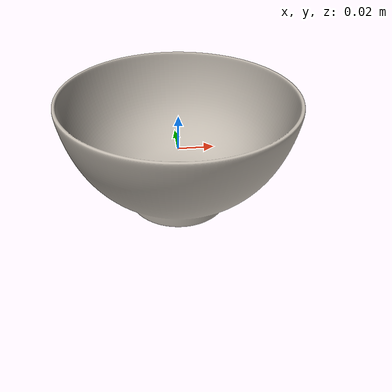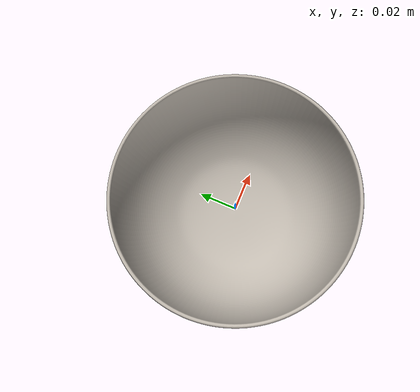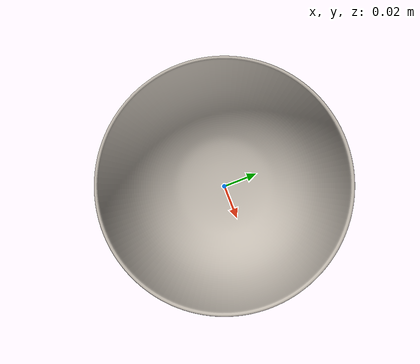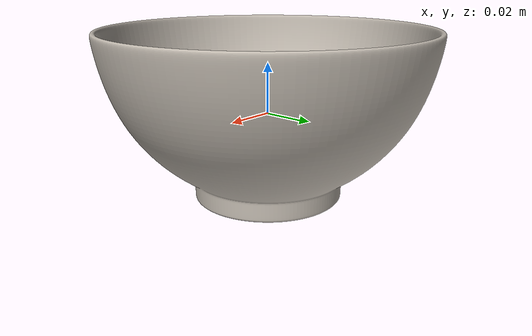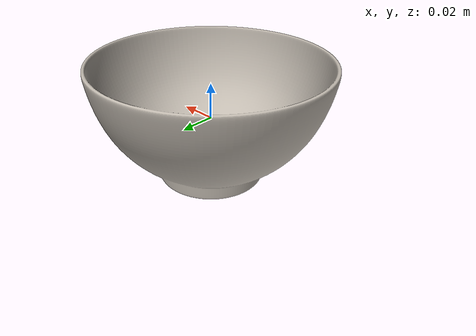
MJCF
<mujoco model="bowl_31">
  <asset>
    <mesh file="visual/model_normalized_0.obj" name="model_normalized_0_vis" scale="0.12999999999999995 0.12999999999999995 0.12999999999999995" refquat="1.0 0.0 0.0 0.0"/>
    <mesh file="collision/model_normalized_collision_22.obj" name="model_normalized_collision_22._coll" scale="0.12999999999999995 0.12999999999999995 0.12999999999999995" refquat="1.0 0.0 0.0 0.0"/>
    <mesh file="collision/model_normalized_collision_23.obj" name="model_normalized_collision_23._coll" scale="0.12999999999999995 0.12999999999999995 0.12999999999999995" refquat="1.0 0.0 0.0 0.0"/>
    <mesh file="collision/model_normalized_collision_21.obj" name="model_normalized_collision_21._coll" scale="0.12999999999999995 0.12999999999999995 0.12999999999999995" refquat="1.0 0.0 0.0 0.0"/>
    <mesh file="collision/model_normalized_collision_20.obj" name="model_normalized_collision_20._coll" scale="0.12999999999999995 0.12999999999999995 0.12999999999999995" refquat="1.0 0.0 0.0 0.0"/>
    <mesh file="collision/model_normalized_collision_24.obj" name="model_normalized_collision_24._coll" scale="0.12999999999999995 0.12999999999999995 0.12999999999999995" refquat="1.0 0.0 0.0 0.0"/>
    <mesh file="collision/model_normalized_collision_30.obj" name="model_normalized_collision_30._coll" scale="0.12999999999999995 0.12999999999999995 0.12999999999999995" refquat="1.0 0.0 0.0 0.0"/>
    <mesh file="collision/model_normalized_collision_18.obj" name="model_normalized_collision_18._coll" scale="0.12999999999999995 0.12999999999999995 0.12999999999999995" refquat="1.0 0.0 0.0 0.0"/>
    <mesh file="collision/model_normalized_collision_19.obj" name="model_normalized_collision_19._coll" scale="0.12999999999999995 0.12999999999999995 0.12999999999999995" refquat="1.0 0.0 0.0 0.0"/>
    <mesh file="collision/model_normalized_collision_31.obj" name="model_normalized_collision_31._coll" scale="0.12999999999999995 0.12999999999999995 0.12999999999999995" refquat="1.0 0.0 0.0 0.0"/>
    <mesh file="collision/model_normalized_collision_25.obj" name="model_normalized_collision_25._coll" scale="0.12999999999999995 0.12999999999999995 0.12999999999999995" refquat="1.0 0.0 0.0 0.0"/>
    <mesh file="collision/model_normalized_collision_27.obj" name="model_normalized_collision_27._coll" scale="0.12999999999999995 0.12999999999999995 0.12999999999999995" refquat="1.0 0.0 0.0 0.0"/>
    <mesh file="collision/model_normalized_collision_26.obj" name="model_normalized_collision_26._coll" scale="0.12999999999999995 0.12999999999999995 0.12999999999999995" refquat="1.0 0.0 0.0 0.0"/>
    <mesh file="collision/model_normalized_collision_9.obj" name="model_normalized_collision_9._coll" scale="0.12999999999999995 0.12999999999999995 0.12999999999999995" refquat="1.0 0.0 0.0 0.0"/>
    <mesh file="collision/model_normalized_collision_8.obj" name="model_normalized_collision_8._coll" scale="0.12999999999999995 0.12999999999999995 0.12999999999999995" refquat="1.0 0.0 0.0 0.0"/>
    <mesh file="collision/model_normalized_collision_6.obj" name="model_normalized_collision_6._coll" scale="0.12999999999999995 0.12999999999999995 0.12999999999999995" refquat="1.0 0.0 0.0 0.0"/>
    <mesh file="collision/model_normalized_collision_7.obj" name="model_normalized_collision_7._coll" scale="0.12999999999999995 0.12999999999999995 0.12999999999999995" refquat="1.0 0.0 0.0 0.0"/>
    <mesh file="collision/model_normalized_collision_5.obj" name="model_normalized_collision_5._coll" scale="0.12999999999999995 0.12999999999999995 0.12999999999999995" refquat="1.0 0.0 0.0 0.0"/>
    <mesh file="collision/model_normalized_collision_4.obj" name="model_normalized_collision_4._coll" scale="0.12999999999999995 0.12999999999999995 0.12999999999999995" refquat="1.0 0.0 0.0 0.0"/>
    <mesh file="collision/model_normalized_collision_0.obj" name="model_normalized_collision_0._coll" scale="0.12999999999999995 0.12999999999999995 0.12999999999999995" refquat="1.0 0.0 0.0 0.0"/>
    <mesh file="collision/model_normalized_collision_1.obj" name="model_normalized_collision_1._coll" scale="0.12999999999999995 0.12999999999999995 0.12999999999999995" refquat="1.0 0.0 0.0 0.0"/>
    <mesh file="collision/model_normalized_collision_3.obj" name="model_normalized_collision_3._coll" scale="0.12999999999999995 0.12999999999999995 0.12999999999999995" refquat="1.0 0.0 0.0 0.0"/>
    <mesh file="collision/model_normalized_collision_2.obj" name="model_normalized_collision_2._coll" scale="0.12999999999999995 0.12999999999999995 0.12999999999999995" refquat="1.0 0.0 0.0 0.0"/>
    <mesh file="collision/model_normalized_collision_17.obj" name="model_normalized_collision_17._coll" scale="0.12999999999999995 0.12999999999999995 0.12999999999999995" refquat="1.0 0.0 0.0 0.0"/>
    <mesh file="collision/model_normalized_collision_16.obj" name="model_normalized_collision_16._coll" scale="0.12999999999999995 0.12999999999999995 0.12999999999999995" refquat="1.0 0.0 0.0 0.0"/>
    <mesh file="collision/model_normalized_collision_28.obj" name="model_normalized_collision_28._coll" scale="0.12999999999999995 0.12999999999999995 0.12999999999999995" refquat="1.0 0.0 0.0 0.0"/>
    <mesh file="collision/model_normalized_collision_14.obj" name="model_normalized_collision_14._coll" scale="0.12999999999999995 0.12999999999999995 0.12999999999999995" refquat="1.0 0.0 0.0 0.0"/>
    <mesh file="collision/model_normalized_collision_15.obj" name="model_normalized_collision_15._coll" scale="0.12999999999999995 0.12999999999999995 0.12999999999999995" refquat="1.0 0.0 0.0 0.0"/>
    <mesh file="collision/model_normalized_collision_29.obj" name="model_normalized_collision_29._coll" scale="0.12999999999999995 0.12999999999999995 0.12999999999999995" refquat="1.0 0.0 0.0 0.0"/>
    <mesh file="collision/model_normalized_collision_11.obj" name="model_normalized_collision_11._coll" scale="0.12999999999999995 0.12999999999999995 0.12999999999999995" refquat="1.0 0.0 0.0 0.0"/>
    <mesh file="collision/model_normalized_collision_10.obj" name="model_normalized_collision_10._coll" scale="0.12999999999999995 0.12999999999999995 0.12999999999999995" refquat="1.0 0.0 0.0 0.0"/>
    <mesh file="collision/model_normalized_collision_12.obj" name="model_normalized_collision_12._coll" scale="0.12999999999999995 0.12999999999999995 0.12999999999999995" refquat="1.0 0.0 0.0 0.0"/>
    <mesh file="collision/model_normalized_collision_13.obj" name="model_normalized_collision_13._coll" scale="0.12999999999999995 0.12999999999999995 0.12999999999999995" refquat="1.0 0.0 0.0 0.0"/>
    <texture type="2d" name="image0" file="visual/image0.png"/>
    <material name="uv_layout_bowl_bakso" texture="image0" specular="0.5" shininess="0.25"/>
  </asset>
  <worldbody>
  <body>
      <body name="object">
        <geom solimp="0.998 0.998 0.001" solref="0.001 1" density="100" friction="0.95 0.3 0.1" type="mesh" mesh="model_normalized_0_vis" conaffinity="0" contype="0" group="1" material="uv_layout_bowl_bakso"/>
        <geom solimp="0.998 0.998 0.001" solref="0.001 1" density="100" friction="0.95 0.3 0.1" type="mesh" mesh="model_normalized_collision_22._coll" group="0" rgba="0.8 0.8 0.8 0.0"/>
        <geom solimp="0.998 0.998 0.001" solref="0.001 1" density="100" friction="0.95 0.3 0.1" type="mesh" mesh="model_normalized_collision_23._coll" group="0" rgba="0.8 0.8 0.8 0.0"/>
        <geom solimp="0.998 0.998 0.001" solref="0.001 1" density="100" friction="0.95 0.3 0.1" type="mesh" mesh="model_normalized_collision_21._coll" group="0" rgba="0.8 0.8 0.8 0.0"/>
        <geom solimp="0.998 0.998 0.001" solref="0.001 1" density="100" friction="0.95 0.3 0.1" type="mesh" mesh="model_normalized_collision_20._coll" group="0" rgba="0.8 0.8 0.8 0.0"/>
        <geom solimp="0.998 0.998 0.001" solref="0.001 1" density="100" friction="0.95 0.3 0.1" type="mesh" mesh="model_normalized_collision_24._coll" group="0" rgba="0.8 0.8 0.8 0.0"/>
        <geom solimp="0.998 0.998 0.001" solref="0.001 1" density="100" friction="0.95 0.3 0.1" type="mesh" mesh="model_normalized_collision_30._coll" group="0" rgba="0.8 0.8 0.8 0.0"/>
        <geom solimp="0.998 0.998 0.001" solref="0.001 1" density="100" friction="0.95 0.3 0.1" type="mesh" mesh="model_normalized_collision_18._coll" group="0" rgba="0.8 0.8 0.8 0.0"/>
        <geom solimp="0.998 0.998 0.001" solref="0.001 1" density="100" friction="0.95 0.3 0.1" type="mesh" mesh="model_normalized_collision_19._coll" group="0" rgba="0.8 0.8 0.8 0.0"/>
        <geom solimp="0.998 0.998 0.001" solref="0.001 1" density="100" friction="0.95 0.3 0.1" type="mesh" mesh="model_normalized_collision_31._coll" group="0" rgba="0.8 0.8 0.8 0.0"/>
        <geom solimp="0.998 0.998 0.001" solref="0.001 1" density="100" friction="0.95 0.3 0.1" type="mesh" mesh="model_normalized_collision_25._coll" group="0" rgba="0.8 0.8 0.8 0.0"/>
        <geom solimp="0.998 0.998 0.001" solref="0.001 1" density="100" friction="0.95 0.3 0.1" type="mesh" mesh="model_normalized_collision_27._coll" group="0" rgba="0.8 0.8 0.8 0.0"/>
        <geom solimp="0.998 0.998 0.001" solref="0.001 1" density="100" friction="0.95 0.3 0.1" type="mesh" mesh="model_normalized_collision_26._coll" group="0" rgba="0.8 0.8 0.8 0.0"/>
        <geom solimp="0.998 0.998 0.001" solref="0.001 1" density="100" friction="0.95 0.3 0.1" type="mesh" mesh="model_normalized_collision_9._coll" group="0" rgba="0.8 0.8 0.8 0.0"/>
        <geom solimp="0.998 0.998 0.001" solref="0.001 1" density="100" friction="0.95 0.3 0.1" type="mesh" mesh="model_normalized_collision_8._coll" group="0" rgba="0.8 0.8 0.8 0.0"/>
        <geom solimp="0.998 0.998 0.001" solref="0.001 1" density="100" friction="0.95 0.3 0.1" type="mesh" mesh="model_normalized_collision_6._coll" group="0" rgba="0.8 0.8 0.8 0.0"/>
        <geom solimp="0.998 0.998 0.001" solref="0.001 1" density="100" friction="0.95 0.3 0.1" type="mesh" mesh="model_normalized_collision_7._coll" group="0" rgba="0.8 0.8 0.8 0.0"/>
        <geom solimp="0.998 0.998 0.001" solref="0.001 1" density="100" friction="0.95 0.3 0.1" type="mesh" mesh="model_normalized_collision_5._coll" group="0" rgba="0.8 0.8 0.8 0.0"/>
        <geom solimp="0.998 0.998 0.001" solref="0.001 1" density="100" friction="0.95 0.3 0.1" type="mesh" mesh="model_normalized_collision_4._coll" group="0" rgba="0.8 0.8 0.8 0.0"/>
        <geom solimp="0.998 0.998 0.001" solref="0.001 1" density="100" friction="0.95 0.3 0.1" type="mesh" mesh="model_normalized_collision_0._coll" group="0" rgba="0.8 0.8 0.8 0.0"/>
        <geom solimp="0.998 0.998 0.001" solref="0.001 1" density="100" friction="0.95 0.3 0.1" type="mesh" mesh="model_normalized_collision_1._coll" group="0" rgba="0.8 0.8 0.8 0.0"/>
        <geom solimp="0.998 0.998 0.001" solref="0.001 1" density="100" friction="0.95 0.3 0.1" type="mesh" mesh="model_normalized_collision_3._coll" group="0" rgba="0.8 0.8 0.8 0.0"/>
        <geom solimp="0.998 0.998 0.001" solref="0.001 1" density="100" friction="0.95 0.3 0.1" type="mesh" mesh="model_normalized_collision_2._coll" group="0" rgba="0.8 0.8 0.8 0.0"/>
        <geom solimp="0.998 0.998 0.001" solref="0.001 1" density="100" friction="0.95 0.3 0.1" type="mesh" mesh="model_normalized_collision_17._coll" group="0" rgba="0.8 0.8 0.8 0.0"/>
        <geom solimp="0.998 0.998 0.001" solref="0.001 1" density="100" friction="0.95 0.3 0.1" type="mesh" mesh="model_normalized_collision_16._coll" group="0" rgba="0.8 0.8 0.8 0.0"/>
        <geom solimp="0.998 0.998 0.001" solref="0.001 1" density="100" friction="0.95 0.3 0.1" type="mesh" mesh="model_normalized_collision_28._coll" group="0" rgba="0.8 0.8 0.8 0.0"/>
        <geom solimp="0.998 0.998 0.001" solref="0.001 1" density="100" friction="0.95 0.3 0.1" type="mesh" mesh="model_normalized_collision_14._coll" group="0" rgba="0.8 0.8 0.8 0.0"/>
        <geom solimp="0.998 0.998 0.001" solref="0.001 1" density="100" friction="0.95 0.3 0.1" type="mesh" mesh="model_normalized_collision_15._coll" group="0" rgba="0.8 0.8 0.8 0.0"/>
        <geom solimp="0.998 0.998 0.001" solref="0.001 1" density="100" friction="0.95 0.3 0.1" type="mesh" mesh="model_normalized_collision_29._coll" group="0" rgba="0.8 0.8 0.8 0.0"/>
        <geom solimp="0.998 0.998 0.001" solref="0.001 1" density="100" friction="0.95 0.3 0.1" type="mesh" mesh="model_normalized_collision_11._coll" group="0" rgba="0.8 0.8 0.8 0.0"/>
        <geom solimp="0.998 0.998 0.001" solref="0.001 1" density="100" friction="0.95 0.3 0.1" type="mesh" mesh="model_normalized_collision_10._coll" group="0" rgba="0.8 0.8 0.8 0.0"/>
        <geom solimp="0.998 0.998 0.001" solref="0.001 1" density="100" friction="0.95 0.3 0.1" type="mesh" mesh="model_normalized_collision_12._coll" group="0" rgba="0.8 0.8 0.8 0.0"/>
        <geom solimp="0.998 0.998 0.001" solref="0.001 1" density="100" friction="0.95 0.3 0.1" type="mesh" mesh="model_normalized_collision_13._coll" group="0" rgba="0.8 0.8 0.8 0.0"/>
      </body>
      <site rgba="0 0 0 0" size="0.005" pos="0.0002278900000000005 1.3000000029239617e-09 -0.02420160209999999" name="bottom_site"/>
      <site rgba="0 0 0 0" size="0.005" pos="0.0002278900000000005 1.3000000029239617e-09 0.02419614079999999" name="top_site"/>
      <site rgba="0 0 0 0" size="0.005" pos="0.06473618839999998 0.06428041489999997 -2.730649999998779e-06" name="horizontal_radius_site"/>
    </body>
    </worldbody>
</mujoco>
